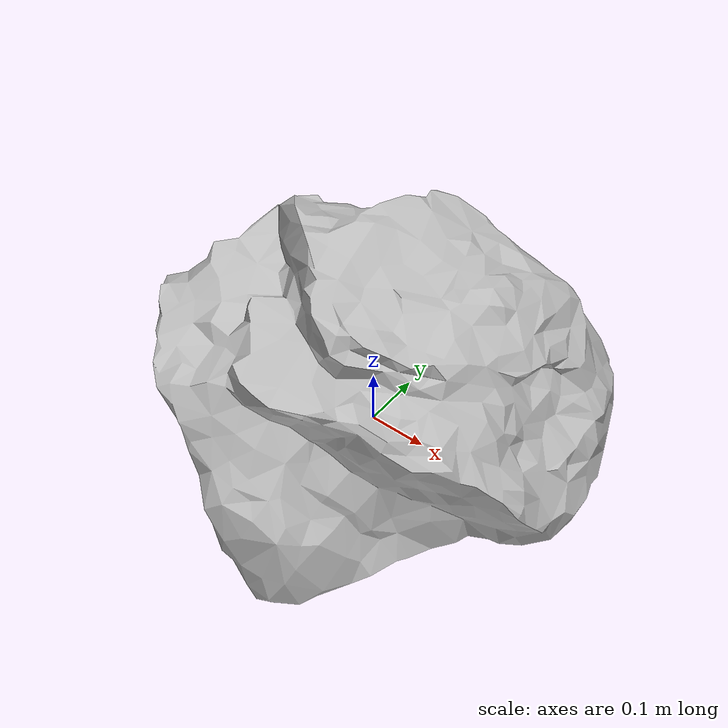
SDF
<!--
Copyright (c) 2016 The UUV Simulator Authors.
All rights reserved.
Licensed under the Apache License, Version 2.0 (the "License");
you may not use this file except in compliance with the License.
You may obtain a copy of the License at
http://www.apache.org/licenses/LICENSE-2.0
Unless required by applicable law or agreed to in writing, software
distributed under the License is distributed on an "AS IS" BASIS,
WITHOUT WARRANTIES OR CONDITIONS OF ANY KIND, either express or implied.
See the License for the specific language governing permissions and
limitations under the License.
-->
<?xml version="1.0" ?>
<sdf version="1.4">
  <model name="rock">
    <static>false</static>
    <link name="rock">
      <collision name="collision">
        <pose>0 0 0.2 0 0 0</pose>
        <geometry>
          <cylinder>
            <radius>0.42</radius>
            <length>0.4</length>
          </cylinder>
        </geometry>
      </collision>

      <visual name="visual">
        <cast_shadows>false</cast_shadows>
        <pose>0 0 0 0 0 0</pose>
        <geometry>
          <mesh>
            <uri>model://rock/meshes/rock_s.dae </uri>
            <scale>1.0 1.0 1.0</scale>
          </mesh>
        </geometry>
      </visual>
    </link>
    <plugin filename="libRealGazebo.so" name="custom::RealGazebo">
      <unreal_ip>127.0.0.1</unreal_ip>
      <unreal_port>5005</unreal_port>
      <type_code>201</type_code>
    </plugin>
  </model>
</sdf>
